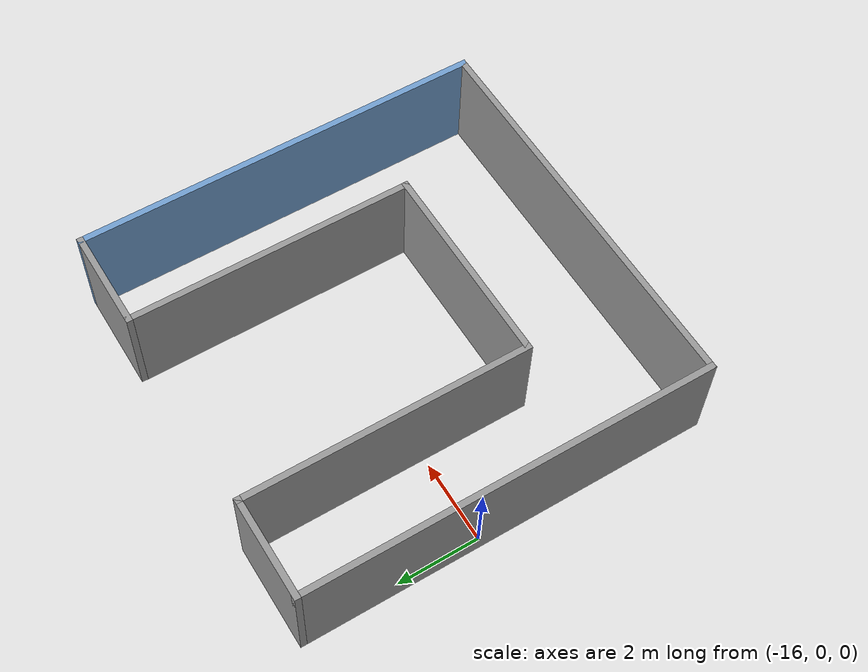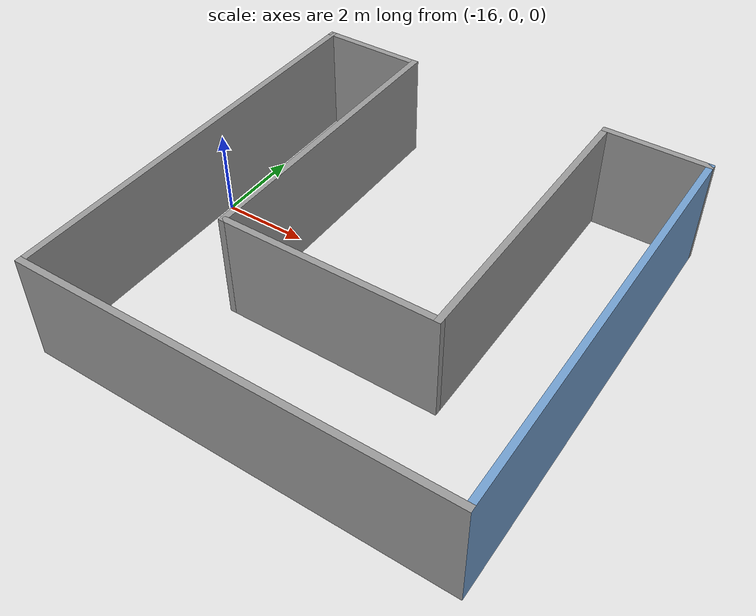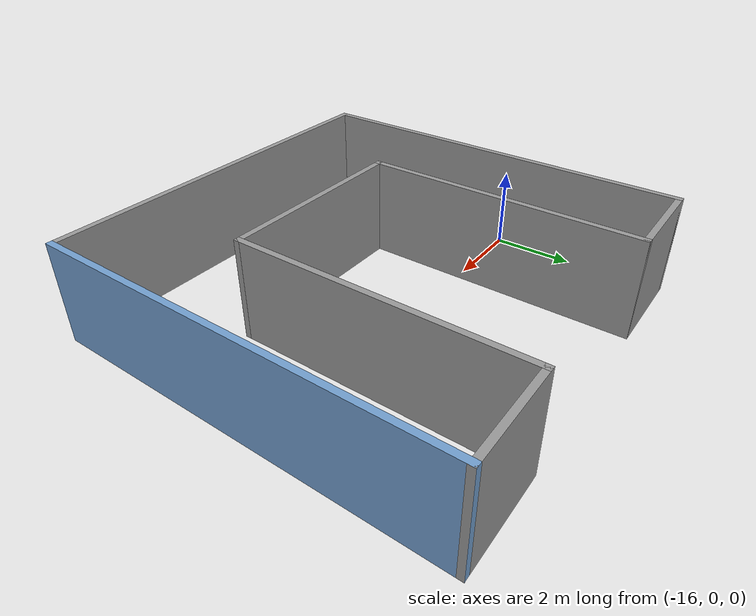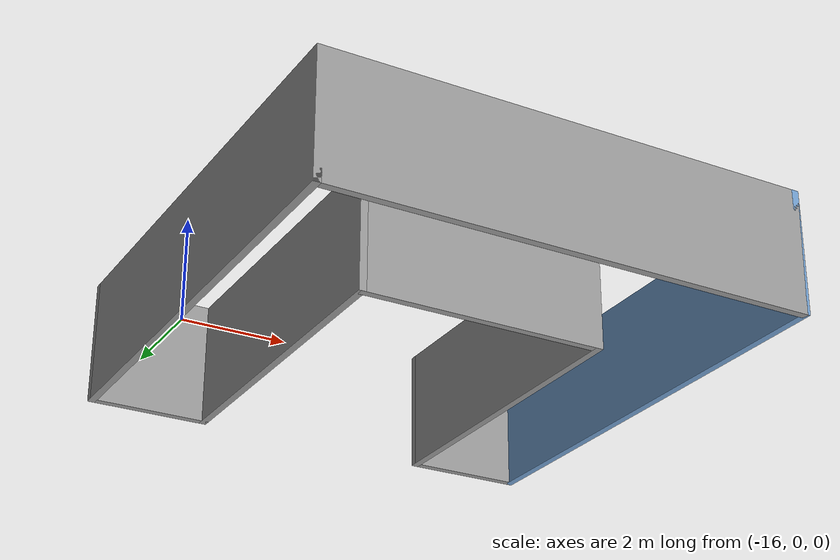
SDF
<?xml version='1.0'?>
<sdf version='1.6'>
  <model name='mybuilding'>
    <pose frame=''>-11.2959 -0.610543 0 0 -0 0</pose>
    <link name='Wall_12'>
      <collision name='Wall_12_Collision'>
        <geometry>
          <box>
            <size>7 0.15 2.5</size>
          </box>
        </geometry>
        <pose frame=''>0 0 1.25 0 -0 0</pose>
      </collision>
      <visual name='Wall_12_Visual'>
        <pose frame=''>0 0 1.25 0 -0 0</pose>
        <geometry>
          <box>
            <size>7 0.15 2.5</size>
          </box>
        </geometry>
        <material>
          <script>
            <uri>file://media/materials/scripts/gazebo.material</uri>
            <name>Gazebo/Grey</name>
          </script>
          <ambient>1 1 1 1</ambient>
        </material>
        <meta>
          <layer>0</layer>
        </meta>
      </visual>
      <pose frame=''>-2.45 1.5 0 0 -0 -1.5708</pose>
    </link>
    <link name='Wall_2'>
      <collision name='Wall_2_Collision'>
        <geometry>
          <box>
            <size>2.5 0.15 2.5</size>
          </box>
        </geometry>
        <pose frame=''>0 0 1.25 0 -0 0</pose>
      </collision>
      <visual name='Wall_2_Visual'>
        <pose frame=''>0 0 1.25 0 -0 0</pose>
        <geometry>
          <box>
            <size>2.5 0.15 2.5</size>
          </box>
        </geometry>
        <material>
          <script>
            <uri>file://media/materials/scripts/gazebo.material</uri>
            <name>Gazebo/Grey</name>
          </script>
          <ambient>1 1 1 1</ambient>
        </material>
        <meta>
          <layer>0</layer>
        </meta>
      </visual>
      <pose frame=''>-3.625 4.925 0 0 -0 0</pose>
    </link>
    <link name='Wall_4'>
      <collision name='Wall_4_Collision'>
        <geometry>
          <box>
            <size>10 0.15 2.5</size>
          </box>
        </geometry>
        <pose frame=''>0 0 1.25 0 -0 0</pose>
      </collision>
      <visual name='Wall_4_Visual'>
        <pose frame=''>0 0 1.25 0 -0 0</pose>
        <geometry>
          <box>
            <size>10 0.15 2.5</size>
          </box>
        </geometry>
        <material>
          <script>
            <uri>file://media/materials/scripts/gazebo.material</uri>
            <name>Gazebo/Grey</name>
          </script>
          <ambient>1 1 1 1</ambient>
        </material>
        <meta>
          <layer>0</layer>
        </meta>
      </visual>
      <pose frame=''>-4.8 -0 0 0 -0 -1.5708</pose>
    </link>
    <link name='Wall_5'>
      <collision name='Wall_5_Collision'>
        <geometry>
          <box>
            <size>9.75 0.15 2.5</size>
          </box>
        </geometry>
        <pose frame=''>0 0 1.25 0 -0 0</pose>
      </collision>
      <visual name='Wall_5_Visual'>
        <pose frame=''>0 0 1.25 0 -0 0</pose>
        <geometry>
          <box>
            <size>9.75 0.15 2.5</size>
          </box>
        </geometry>
        <material>
          <script>
            <uri>file://media/materials/scripts/gazebo.material</uri>
            <name>Gazebo/Grey</name>
          </script>
          <ambient>1 1 1 1</ambient>
        </material>
        <meta>
          <layer>0</layer>
        </meta>
      </visual>
      <pose frame=''>0 -4.925 0 0 -0 0</pose>
    </link>
    <link name='Wall_6'>
      <collision name='Wall_6_Collision'>
        <geometry>
          <box>
            <size>10 0.15 2.5</size>
          </box>
        </geometry>
        <pose frame=''>0 0 1.25 0 -0 0</pose>
      </collision>
      <visual name='Wall_6_Visual'>
        <pose frame=''>0 0 1.25 0 -0 0</pose>
        <geometry>
          <box>
            <size>10 0.15 2.5</size>
          </box>
        </geometry>
        <material>
          <script>
            <uri>file://media/materials/scripts/gazebo.material</uri>
            <name>Gazebo/Grey</name>
          </script>
          <ambient>0.447059 0.623529 0.811765 1</ambient>
        </material>
        <meta>
          <layer>0</layer>
        </meta>
      </visual>
      <pose frame=''>4.8 -0 0 0 -0 1.5708</pose>
    </link>
    <link name='Wall_7'>
      <collision name='Wall_7_Collision'>
        <geometry>
          <box>
            <size>2.5 0.15 2.5</size>
          </box>
        </geometry>
        <pose frame=''>0 0 1.25 0 -0 0</pose>
      </collision>
      <visual name='Wall_7_Visual'>
        <pose frame=''>0 0 1.25 0 -0 0</pose>
        <geometry>
          <box>
            <size>2.5 0.15 2.5</size>
          </box>
        </geometry>
        <material>
          <script>
            <uri>file://media/materials/scripts/gazebo.material</uri>
            <name>Gazebo/Grey</name>
          </script>
          <ambient>1 1 1 1</ambient>
        </material>
        <meta>
          <layer>0</layer>
        </meta>
      </visual>
      <pose frame=''>3.625 4.925 0 0 -0 3.14159</pose>
    </link>
    <link name='Wall_8'>
      <collision name='Wall_8_Collision'>
        <geometry>
          <box>
            <size>7 0.15 2.5</size>
          </box>
        </geometry>
        <pose frame=''>0 0 1.25 0 -0 0</pose>
      </collision>
      <visual name='Wall_8_Visual'>
        <pose frame=''>0 0 1.25 0 -0 0</pose>
        <geometry>
          <box>
            <size>7 0.15 2.5</size>
          </box>
        </geometry>
        <material>
          <script>
            <uri>file://media/materials/scripts/gazebo.material</uri>
            <name>Gazebo/Grey</name>
          </script>
          <ambient>1 1 1 1</ambient>
        </material>
        <meta>
          <layer>0</layer>
        </meta>
      </visual>
      <pose frame=''>2.45 1.5 0 0 -0 -1.5708</pose>
    </link>
    <link name='Wall_9'>
      <collision name='Wall_9_Collision'>
        <geometry>
          <box>
            <size>5 0.15 2.5</size>
          </box>
        </geometry>
        <pose frame=''>0 0 1.25 0 -0 0</pose>
      </collision>
      <visual name='Wall_9_Visual'>
        <pose frame=''>0 0 1.25 0 -0 0</pose>
        <geometry>
          <box>
            <size>5 0.15 2.5</size>
          </box>
        </geometry>
        <material>
          <script>
            <uri>file://media/materials/scripts/gazebo.material</uri>
            <name>Gazebo/Grey</name>
          </script>
          <ambient>1 1 1 1</ambient>
        </material>
        <meta>
          <layer>0</layer>
        </meta>
      </visual>
      <pose frame=''>0.025001 -1.925 0 0 -0 3.14159</pose>
    </link>
    <static>1</static>
  </model>
</sdf>
